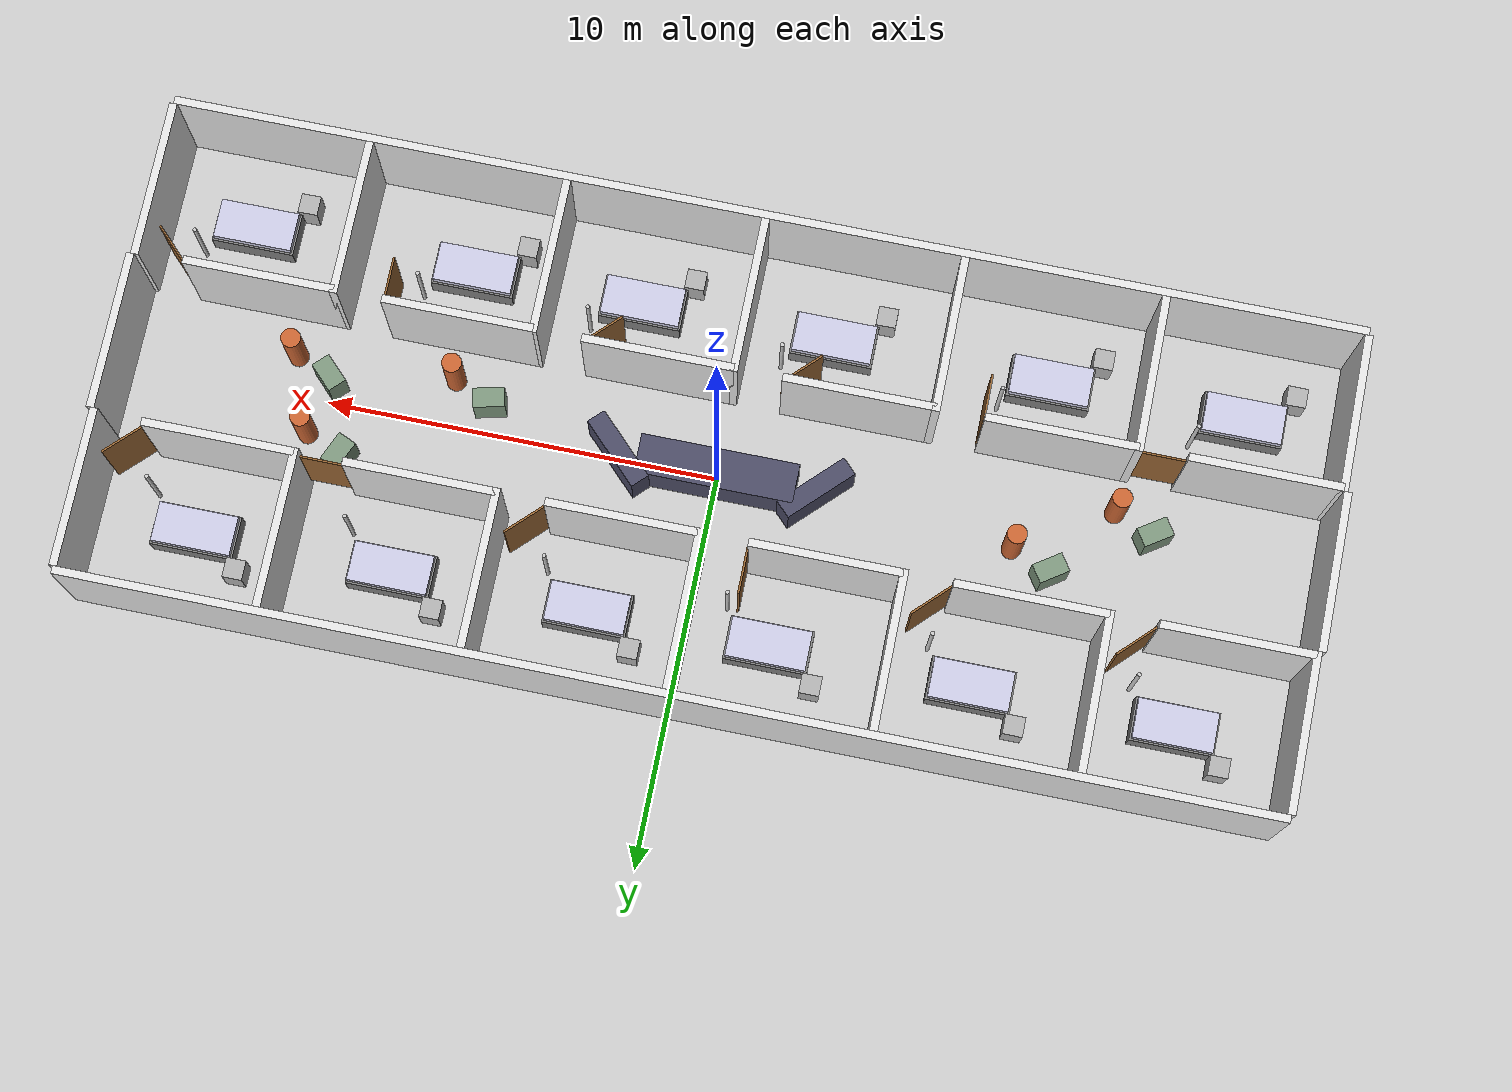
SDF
<?xml version="1.0" ?>
<sdf version="1.8">
  <world name="hospital_ward">
    <physics name="1ms" type="ignored">
      <max_step_size>0.001</max_step_size>
      <real_time_factor>1.0</real_time_factor>
    </physics>

    <plugin filename="gz-sim-physics-system" name="gz::sim::systems::Physics" />
    <plugin filename="gz-sim-sensors-system" name="gz::sim::systems::Sensors">
      <render_engine>ogre2</render_engine>
    </plugin>
    <plugin filename="gz-sim-user-commands-system" name="gz::sim::systems::UserCommands" />
    <plugin filename="gz-sim-scene-broadcaster-system" name="gz::sim::systems::SceneBroadcaster" />

    <light type="directional" name="sun">
      <cast_shadows>true</cast_shadows>
      <pose>0 0 10 0 0 0</pose>
      <diffuse>0.8 0.8 0.8 1</diffuse>
      <specular>0.2 0.2 0.2 1</specular>
      <attenuation>
        <range>1000</range>
        <constant>0.9</constant>
        <linear>0.01</linear>
        <quadratic>0.001</quadratic>
      </attenuation>
      <direction>-0.5 0.1 -0.9</direction>
    </light>

    <model name="ground_plane">
      <static>true</static>
      <pose>0 0 -0.05 0 0 0</pose>
      <link name="link">
        <collision name="collision">
          <geometry>
            <box><size>100 100 0.1</size></box>
          </geometry>
        </collision>
        <visual name="visual">
          <geometry>
            <box><size>100 100 0.1</size></box>
          </geometry>
          <material>
            <ambient>0.8 0.8 0.8 1</ambient>
            <diffuse>0.8 0.8 0.8 1</diffuse>
          </material>
        </visual>
      </link>
    </model>

    <model name="wall_end_1">
      <static>true</static>
      <pose>-15.100 0.000 1.500 0.000 0.000 0.000</pose>
      <link name="link">
        <collision name="collision">
          <geometry><box><size>0.200 4.000 3.000</size></box></geometry>
        </collision>
        <visual name="visual">
          <geometry><box><size>0.200 4.000 3.000</size></box></geometry>
          <material>
            <ambient>0.9 0.9 0.9 1</ambient>
            <diffuse>0.9 0.9 0.9 1</diffuse>
          </material>
        </visual>
      </link>
    </model>

    <model name="wall_end_2">
      <static>true</static>
      <pose>15.100 0.000 1.500 0.000 0.000 0.000</pose>
      <link name="link">
        <collision name="collision">
          <geometry><box><size>0.200 4.000 3.000</size></box></geometry>
        </collision>
        <visual name="visual">
          <geometry><box><size>0.200 4.000 3.000</size></box></geometry>
          <material>
            <ambient>0.9 0.9 0.9 1</ambient>
            <diffuse>0.9 0.9 0.9 1</diffuse>
          </material>
        </visual>
      </link>
    </model>

    <model name="outer_wall_1">
      <static>true</static>
      <pose>0.000 6.100 1.500 0.000 0.000 0.000</pose>
      <link name="link">
        <collision name="collision">
          <geometry><box><size>30.000 0.200 3.000</size></box></geometry>
        </collision>
        <visual name="visual">
          <geometry><box><size>30.000 0.200 3.000</size></box></geometry>
          <material>
            <ambient>0.9 0.9 0.9 1</ambient>
            <diffuse>0.9 0.9 0.9 1</diffuse>
          </material>
        </visual>
      </link>
    </model>

    <model name="div_wall_1">
      <static>true</static>
      <pose>-15.000 4.000 1.500 0.000 0.000 0.000</pose>
      <link name="link">
        <collision name="collision">
          <geometry><box><size>0.200 4.000 3.000</size></box></geometry>
        </collision>
        <visual name="visual">
          <geometry><box><size>0.200 4.000 3.000</size></box></geometry>
          <material>
            <ambient>0.9 0.9 0.9 1</ambient>
            <diffuse>0.9 0.9 0.9 1</diffuse>
          </material>
        </visual>
      </link>
    </model>

    <model name="corr_wall_1">
      <static>true</static>
      <pose>-13.100 2.100 1.500 0.000 0.000 0.000</pose>
      <link name="link">
        <collision name="collision">
          <geometry><box><size>3.800 0.200 3.000</size></box></geometry>
        </collision>
        <visual name="visual">
          <geometry><box><size>3.800 0.200 3.000</size></box></geometry>
          <material>
            <ambient>0.9 0.9 0.9 1</ambient>
            <diffuse>0.9 0.9 0.9 1</diffuse>
          </material>
        </visual>
      </link>
    </model>

    <model name="door_1">
      <static>true</static>
      <pose>-10.776 2.524 1.500 0.000 0.000 0.785</pose>
      <link name="link">
        <collision name="collision">
          <geometry><box><size>1.200 0.050 2.200</size></box></geometry>
        </collision>
        <visual name="visual">
          <geometry><box><size>1.200 0.050 2.200</size></box></geometry>
          <material>
            <ambient>0.6 0.4 0.2 1</ambient>
            <diffuse>0.6 0.4 0.2 1</diffuse>
          </material>
        </visual>
      </link>
    </model>

    <model name="bed_frame_1">
      <static>true</static>
      <pose>-12.231 4.000 0.300 0.000 0.000 0.000</pose>
      <link name="link">
        <collision name="collision">
          <geometry><box><size>2.100 1.100 0.600</size></box></geometry>
        </collision>
        <visual name="visual">
          <geometry><box><size>2.100 1.100 0.600</size></box></geometry>
          <material>
            <ambient>0.5 0.5 0.5 1</ambient>
            <diffuse>0.5 0.5 0.5 1</diffuse>
          </material>
        </visual>
      </link>
    </model>

    <model name="bed_1">
      <static>true</static>
      <pose>-12.231 4.000 0.700 0.000 0.000 0.000</pose>
      <link name="link">
        <collision name="collision">
          <geometry><box><size>2.000 1.000 0.200</size></box></geometry>
        </collision>
        <visual name="visual">
          <geometry><box><size>2.000 1.000 0.200</size></box></geometry>
          <material>
            <ambient>0.8 0.8 0.9 1</ambient>
            <diffuse>0.8 0.8 0.9 1</diffuse>
          </material>
        </visual>
      </link>
    </model>

    <model name="table_1">
      <static>true</static>
      <pose>-13.431 4.800 0.400 0.000 0.000 0.000</pose>
      <link name="link">
        <collision name="collision">
          <geometry><box><size>0.500 0.500 0.800</size></box></geometry>
        </collision>
        <visual name="visual">
          <geometry><box><size>0.500 0.500 0.800</size></box></geometry>
          <material>
            <ambient>0.7 0.7 0.7 1</ambient>
            <diffuse>0.7 0.7 0.7 1</diffuse>
          </material>
        </visual>
      </link>
    </model>

    <model name="iv_pole_1">
      <static>true</static>
      <pose>-11.031 3.200 1.000 0.000 0.000 0.000</pose>
      <link name="link">
        <collision name="collision">
          <geometry><cylinder><radius>0.050</radius><length>2.000</length></cylinder></geometry>
        </collision>
        <visual name="visual">
          <geometry><cylinder><radius>0.050</radius><length>2.000</length></cylinder></geometry>
          <material>
            <ambient>0.8 0.8 0.8 1</ambient>
            <diffuse>0.8 0.8 0.8 1</diffuse>
          </material>
        </visual>
      </link>
    </model>

    <model name="div_wall_2">
      <static>true</static>
      <pose>-10.000 4.000 1.500 0.000 0.000 0.000</pose>
      <link name="link">
        <collision name="collision">
          <geometry><box><size>0.200 4.000 3.000</size></box></geometry>
        </collision>
        <visual name="visual">
          <geometry><box><size>0.200 4.000 3.000</size></box></geometry>
          <material>
            <ambient>0.9 0.9 0.9 1</ambient>
            <diffuse>0.9 0.9 0.9 1</diffuse>
          </material>
        </visual>
      </link>
    </model>

    <model name="corr_wall_2">
      <static>true</static>
      <pose>-8.100 2.100 1.500 0.000 0.000 0.000</pose>
      <link name="link">
        <collision name="collision">
          <geometry><box><size>3.800 0.200 3.000</size></box></geometry>
        </collision>
        <visual name="visual">
          <geometry><box><size>3.800 0.200 3.000</size></box></geometry>
          <material>
            <ambient>0.9 0.9 0.9 1</ambient>
            <diffuse>0.9 0.9 0.9 1</diffuse>
          </material>
        </visual>
      </link>
    </model>

    <model name="door_2">
      <static>true</static>
      <pose>-5.776 2.524 1.500 0.000 0.000 0.785</pose>
      <link name="link">
        <collision name="collision">
          <geometry><box><size>1.200 0.050 2.200</size></box></geometry>
        </collision>
        <visual name="visual">
          <geometry><box><size>1.200 0.050 2.200</size></box></geometry>
          <material>
            <ambient>0.6 0.4 0.2 1</ambient>
            <diffuse>0.6 0.4 0.2 1</diffuse>
          </material>
        </visual>
      </link>
    </model>

    <model name="bed_frame_2">
      <static>true</static>
      <pose>-7.167 4.000 0.300 0.000 0.000 0.000</pose>
      <link name="link">
        <collision name="collision">
          <geometry><box><size>2.100 1.100 0.600</size></box></geometry>
        </collision>
        <visual name="visual">
          <geometry><box><size>2.100 1.100 0.600</size></box></geometry>
          <material>
            <ambient>0.5 0.5 0.5 1</ambient>
            <diffuse>0.5 0.5 0.5 1</diffuse>
          </material>
        </visual>
      </link>
    </model>

    <model name="bed_2">
      <static>true</static>
      <pose>-7.167 4.000 0.700 0.000 0.000 0.000</pose>
      <link name="link">
        <collision name="collision">
          <geometry><box><size>2.000 1.000 0.200</size></box></geometry>
        </collision>
        <visual name="visual">
          <geometry><box><size>2.000 1.000 0.200</size></box></geometry>
          <material>
            <ambient>0.8 0.8 0.9 1</ambient>
            <diffuse>0.8 0.8 0.9 1</diffuse>
          </material>
        </visual>
      </link>
    </model>

    <model name="table_2">
      <static>true</static>
      <pose>-8.367 4.800 0.400 0.000 0.000 0.000</pose>
      <link name="link">
        <collision name="collision">
          <geometry><box><size>0.500 0.500 0.800</size></box></geometry>
        </collision>
        <visual name="visual">
          <geometry><box><size>0.500 0.500 0.800</size></box></geometry>
          <material>
            <ambient>0.7 0.7 0.7 1</ambient>
            <diffuse>0.7 0.7 0.7 1</diffuse>
          </material>
        </visual>
      </link>
    </model>

    <model name="iv_pole_2">
      <static>true</static>
      <pose>-5.967 3.200 1.000 0.000 0.000 0.000</pose>
      <link name="link">
        <collision name="collision">
          <geometry><cylinder><radius>0.050</radius><length>2.000</length></cylinder></geometry>
        </collision>
        <visual name="visual">
          <geometry><cylinder><radius>0.050</radius><length>2.000</length></cylinder></geometry>
          <material>
            <ambient>0.8 0.8 0.8 1</ambient>
            <diffuse>0.8 0.8 0.8 1</diffuse>
          </material>
        </visual>
      </link>
    </model>

    <model name="div_wall_3">
      <static>true</static>
      <pose>-5.000 4.000 1.500 0.000 0.000 0.000</pose>
      <link name="link">
        <collision name="collision">
          <geometry><box><size>0.200 4.000 3.000</size></box></geometry>
        </collision>
        <visual name="visual">
          <geometry><box><size>0.200 4.000 3.000</size></box></geometry>
          <material>
            <ambient>0.9 0.9 0.9 1</ambient>
            <diffuse>0.9 0.9 0.9 1</diffuse>
          </material>
        </visual>
      </link>
    </model>

    <model name="corr_wall_3">
      <static>true</static>
      <pose>-3.100 2.100 1.500 0.000 0.000 0.000</pose>
      <link name="link">
        <collision name="collision">
          <geometry><box><size>3.800 0.200 3.000</size></box></geometry>
        </collision>
        <visual name="visual">
          <geometry><box><size>3.800 0.200 3.000</size></box></geometry>
          <material>
            <ambient>0.9 0.9 0.9 1</ambient>
            <diffuse>0.9 0.9 0.9 1</diffuse>
          </material>
        </visual>
      </link>
    </model>

    <model name="door_3">
      <static>true</static>
      <pose>-1.200 2.700 1.500 0.000 0.000 1.571</pose>
      <link name="link">
        <collision name="collision">
          <geometry><box><size>1.200 0.050 2.200</size></box></geometry>
        </collision>
        <visual name="visual">
          <geometry><box><size>1.200 0.050 2.200</size></box></geometry>
          <material>
            <ambient>0.6 0.4 0.2 1</ambient>
            <diffuse>0.6 0.4 0.2 1</diffuse>
          </material>
        </visual>
      </link>
    </model>

    <model name="bed_frame_3">
      <static>true</static>
      <pose>-2.115 4.000 0.300 0.000 0.000 0.000</pose>
      <link name="link">
        <collision name="collision">
          <geometry><box><size>2.100 1.100 0.600</size></box></geometry>
        </collision>
        <visual name="visual">
          <geometry><box><size>2.100 1.100 0.600</size></box></geometry>
          <material>
            <ambient>0.5 0.5 0.5 1</ambient>
            <diffuse>0.5 0.5 0.5 1</diffuse>
          </material>
        </visual>
      </link>
    </model>

    <model name="bed_3">
      <static>true</static>
      <pose>-2.115 4.000 0.700 0.000 0.000 0.000</pose>
      <link name="link">
        <collision name="collision">
          <geometry><box><size>2.000 1.000 0.200</size></box></geometry>
        </collision>
        <visual name="visual">
          <geometry><box><size>2.000 1.000 0.200</size></box></geometry>
          <material>
            <ambient>0.8 0.8 0.9 1</ambient>
            <diffuse>0.8 0.8 0.9 1</diffuse>
          </material>
        </visual>
      </link>
    </model>

    <model name="table_3">
      <static>true</static>
      <pose>-3.315 4.800 0.400 0.000 0.000 0.000</pose>
      <link name="link">
        <collision name="collision">
          <geometry><box><size>0.500 0.500 0.800</size></box></geometry>
        </collision>
        <visual name="visual">
          <geometry><box><size>0.500 0.500 0.800</size></box></geometry>
          <material>
            <ambient>0.7 0.7 0.7 1</ambient>
            <diffuse>0.7 0.7 0.7 1</diffuse>
          </material>
        </visual>
      </link>
    </model>

    <model name="iv_pole_3">
      <static>true</static>
      <pose>-0.915 3.200 1.000 0.000 0.000 0.000</pose>
      <link name="link">
        <collision name="collision">
          <geometry><cylinder><radius>0.050</radius><length>2.000</length></cylinder></geometry>
        </collision>
        <visual name="visual">
          <geometry><cylinder><radius>0.050</radius><length>2.000</length></cylinder></geometry>
          <material>
            <ambient>0.8 0.8 0.8 1</ambient>
            <diffuse>0.8 0.8 0.8 1</diffuse>
          </material>
        </visual>
      </link>
    </model>

    <model name="div_wall_4">
      <static>true</static>
      <pose>0.000 4.000 1.500 0.000 0.000 0.000</pose>
      <link name="link">
        <collision name="collision">
          <geometry><box><size>0.200 4.000 3.000</size></box></geometry>
        </collision>
        <visual name="visual">
          <geometry><box><size>0.200 4.000 3.000</size></box></geometry>
          <material>
            <ambient>0.9 0.9 0.9 1</ambient>
            <diffuse>0.9 0.9 0.9 1</diffuse>
          </material>
        </visual>
      </link>
    </model>

    <model name="corr_wall_4">
      <static>true</static>
      <pose>1.900 2.100 1.500 0.000 0.000 0.000</pose>
      <link name="link">
        <collision name="collision">
          <geometry><box><size>3.800 0.200 3.000</size></box></geometry>
        </collision>
        <visual name="visual">
          <geometry><box><size>3.800 0.200 3.000</size></box></geometry>
          <material>
            <ambient>0.9 0.9 0.9 1</ambient>
            <diffuse>0.9 0.9 0.9 1</diffuse>
          </material>
        </visual>
      </link>
    </model>

    <model name="door_4">
      <static>true</static>
      <pose>4.224 2.524 1.500 0.000 0.000 0.785</pose>
      <link name="link">
        <collision name="collision">
          <geometry><box><size>1.200 0.050 2.200</size></box></geometry>
        </collision>
        <visual name="visual">
          <geometry><box><size>1.200 0.050 2.200</size></box></geometry>
          <material>
            <ambient>0.6 0.4 0.2 1</ambient>
            <diffuse>0.6 0.4 0.2 1</diffuse>
          </material>
        </visual>
      </link>
    </model>

    <model name="bed_frame_4">
      <static>true</static>
      <pose>2.433 4.000 0.300 0.000 0.000 0.000</pose>
      <link name="link">
        <collision name="collision">
          <geometry><box><size>2.100 1.100 0.600</size></box></geometry>
        </collision>
        <visual name="visual">
          <geometry><box><size>2.100 1.100 0.600</size></box></geometry>
          <material>
            <ambient>0.5 0.5 0.5 1</ambient>
            <diffuse>0.5 0.5 0.5 1</diffuse>
          </material>
        </visual>
      </link>
    </model>

    <model name="bed_4">
      <static>true</static>
      <pose>2.433 4.000 0.700 0.000 0.000 0.000</pose>
      <link name="link">
        <collision name="collision">
          <geometry><box><size>2.000 1.000 0.200</size></box></geometry>
        </collision>
        <visual name="visual">
          <geometry><box><size>2.000 1.000 0.200</size></box></geometry>
          <material>
            <ambient>0.8 0.8 0.9 1</ambient>
            <diffuse>0.8 0.8 0.9 1</diffuse>
          </material>
        </visual>
      </link>
    </model>

    <model name="table_4">
      <static>true</static>
      <pose>1.233 4.800 0.400 0.000 0.000 0.000</pose>
      <link name="link">
        <collision name="collision">
          <geometry><box><size>0.500 0.500 0.800</size></box></geometry>
        </collision>
        <visual name="visual">
          <geometry><box><size>0.500 0.500 0.800</size></box></geometry>
          <material>
            <ambient>0.7 0.7 0.7 1</ambient>
            <diffuse>0.7 0.7 0.7 1</diffuse>
          </material>
        </visual>
      </link>
    </model>

    <model name="iv_pole_4">
      <static>true</static>
      <pose>3.633 3.200 1.000 0.000 0.000 0.000</pose>
      <link name="link">
        <collision name="collision">
          <geometry><cylinder><radius>0.050</radius><length>2.000</length></cylinder></geometry>
        </collision>
        <visual name="visual">
          <geometry><cylinder><radius>0.050</radius><length>2.000</length></cylinder></geometry>
          <material>
            <ambient>0.8 0.8 0.8 1</ambient>
            <diffuse>0.8 0.8 0.8 1</diffuse>
          </material>
        </visual>
      </link>
    </model>

    <model name="div_wall_5">
      <static>true</static>
      <pose>5.000 4.000 1.500 0.000 0.000 0.000</pose>
      <link name="link">
        <collision name="collision">
          <geometry><box><size>0.200 4.000 3.000</size></box></geometry>
        </collision>
        <visual name="visual">
          <geometry><box><size>0.200 4.000 3.000</size></box></geometry>
          <material>
            <ambient>0.9 0.9 0.9 1</ambient>
            <diffuse>0.9 0.9 0.9 1</diffuse>
          </material>
        </visual>
      </link>
    </model>

    <model name="corr_wall_5">
      <static>true</static>
      <pose>6.900 2.100 1.500 0.000 0.000 0.000</pose>
      <link name="link">
        <collision name="collision">
          <geometry><box><size>3.800 0.200 3.000</size></box></geometry>
        </collision>
        <visual name="visual">
          <geometry><box><size>3.800 0.200 3.000</size></box></geometry>
          <material>
            <ambient>0.9 0.9 0.9 1</ambient>
            <diffuse>0.9 0.9 0.9 1</diffuse>
          </material>
        </visual>
      </link>
    </model>

    <model name="door_5">
      <static>true</static>
      <pose>9.400 2.100 1.500 0.000 0.000 0.000</pose>
      <link name="link">
        <collision name="collision">
          <geometry><box><size>1.200 0.050 2.200</size></box></geometry>
        </collision>
        <visual name="visual">
          <geometry><box><size>1.200 0.050 2.200</size></box></geometry>
          <material>
            <ambient>0.6 0.4 0.2 1</ambient>
            <diffuse>0.6 0.4 0.2 1</diffuse>
          </material>
        </visual>
      </link>
    </model>

    <model name="bed_frame_5">
      <static>true</static>
      <pose>7.400 4.000 0.300 0.000 0.000 0.000</pose>
      <link name="link">
        <collision name="collision">
          <geometry><box><size>2.100 1.100 0.600</size></box></geometry>
        </collision>
        <visual name="visual">
          <geometry><box><size>2.100 1.100 0.600</size></box></geometry>
          <material>
            <ambient>0.5 0.5 0.5 1</ambient>
            <diffuse>0.5 0.5 0.5 1</diffuse>
          </material>
        </visual>
      </link>
    </model>

    <model name="bed_5">
      <static>true</static>
      <pose>7.400 4.000 0.700 0.000 0.000 0.000</pose>
      <link name="link">
        <collision name="collision">
          <geometry><box><size>2.000 1.000 0.200</size></box></geometry>
        </collision>
        <visual name="visual">
          <geometry><box><size>2.000 1.000 0.200</size></box></geometry>
          <material>
            <ambient>0.8 0.8 0.9 1</ambient>
            <diffuse>0.8 0.8 0.9 1</diffuse>
          </material>
        </visual>
      </link>
    </model>

    <model name="table_5">
      <static>true</static>
      <pose>6.200 4.800 0.400 0.000 0.000 0.000</pose>
      <link name="link">
        <collision name="collision">
          <geometry><box><size>0.500 0.500 0.800</size></box></geometry>
        </collision>
        <visual name="visual">
          <geometry><box><size>0.500 0.500 0.800</size></box></geometry>
          <material>
            <ambient>0.7 0.7 0.7 1</ambient>
            <diffuse>0.7 0.7 0.7 1</diffuse>
          </material>
        </visual>
      </link>
    </model>

    <model name="iv_pole_5">
      <static>true</static>
      <pose>8.600 3.200 1.000 0.000 0.000 0.000</pose>
      <link name="link">
        <collision name="collision">
          <geometry><cylinder><radius>0.050</radius><length>2.000</length></cylinder></geometry>
        </collision>
        <visual name="visual">
          <geometry><cylinder><radius>0.050</radius><length>2.000</length></cylinder></geometry>
          <material>
            <ambient>0.8 0.8 0.8 1</ambient>
            <diffuse>0.8 0.8 0.8 1</diffuse>
          </material>
        </visual>
      </link>
    </model>

    <model name="div_wall_6">
      <static>true</static>
      <pose>10.000 4.000 1.500 0.000 0.000 0.000</pose>
      <link name="link">
        <collision name="collision">
          <geometry><box><size>0.200 4.000 3.000</size></box></geometry>
        </collision>
        <visual name="visual">
          <geometry><box><size>0.200 4.000 3.000</size></box></geometry>
          <material>
            <ambient>0.9 0.9 0.9 1</ambient>
            <diffuse>0.9 0.9 0.9 1</diffuse>
          </material>
        </visual>
      </link>
    </model>

    <model name="corr_wall_6">
      <static>true</static>
      <pose>11.900 2.100 1.500 0.000 0.000 0.000</pose>
      <link name="link">
        <collision name="collision">
          <geometry><box><size>3.800 0.200 3.000</size></box></geometry>
        </collision>
        <visual name="visual">
          <geometry><box><size>3.800 0.200 3.000</size></box></geometry>
          <material>
            <ambient>0.9 0.9 0.9 1</ambient>
            <diffuse>0.9 0.9 0.9 1</diffuse>
          </material>
        </visual>
      </link>
    </model>

    <model name="door_6">
      <static>true</static>
      <pose>14.224 2.524 1.500 0.000 0.000 0.785</pose>
      <link name="link">
        <collision name="collision">
          <geometry><box><size>1.200 0.050 2.200</size></box></geometry>
        </collision>
        <visual name="visual">
          <geometry><box><size>1.200 0.050 2.200</size></box></geometry>
          <material>
            <ambient>0.6 0.4 0.2 1</ambient>
            <diffuse>0.6 0.4 0.2 1</diffuse>
          </material>
        </visual>
      </link>
    </model>

    <model name="bed_frame_6">
      <static>true</static>
      <pose>12.373 4.000 0.300 0.000 0.000 0.000</pose>
      <link name="link">
        <collision name="collision">
          <geometry><box><size>2.100 1.100 0.600</size></box></geometry>
        </collision>
        <visual name="visual">
          <geometry><box><size>2.100 1.100 0.600</size></box></geometry>
          <material>
            <ambient>0.5 0.5 0.5 1</ambient>
            <diffuse>0.5 0.5 0.5 1</diffuse>
          </material>
        </visual>
      </link>
    </model>

    <model name="bed_6">
      <static>true</static>
      <pose>12.373 4.000 0.700 0.000 0.000 0.000</pose>
      <link name="link">
        <collision name="collision">
          <geometry><box><size>2.000 1.000 0.200</size></box></geometry>
        </collision>
        <visual name="visual">
          <geometry><box><size>2.000 1.000 0.200</size></box></geometry>
          <material>
            <ambient>0.8 0.8 0.9 1</ambient>
            <diffuse>0.8 0.8 0.9 1</diffuse>
          </material>
        </visual>
      </link>
    </model>

    <model name="table_6">
      <static>true</static>
      <pose>11.173 4.800 0.400 0.000 0.000 0.000</pose>
      <link name="link">
        <collision name="collision">
          <geometry><box><size>0.500 0.500 0.800</size></box></geometry>
        </collision>
        <visual name="visual">
          <geometry><box><size>0.500 0.500 0.800</size></box></geometry>
          <material>
            <ambient>0.7 0.7 0.7 1</ambient>
            <diffuse>0.7 0.7 0.7 1</diffuse>
          </material>
        </visual>
      </link>
    </model>

    <model name="iv_pole_6">
      <static>true</static>
      <pose>13.573 3.200 1.000 0.000 0.000 0.000</pose>
      <link name="link">
        <collision name="collision">
          <geometry><cylinder><radius>0.050</radius><length>2.000</length></cylinder></geometry>
        </collision>
        <visual name="visual">
          <geometry><cylinder><radius>0.050</radius><length>2.000</length></cylinder></geometry>
          <material>
            <ambient>0.8 0.8 0.8 1</ambient>
            <diffuse>0.8 0.8 0.8 1</diffuse>
          </material>
        </visual>
      </link>
    </model>

    <model name="div_wall_end_1">
      <static>true</static>
      <pose>15.000 4.000 1.500 0.000 0.000 0.000</pose>
      <link name="link">
        <collision name="collision">
          <geometry><box><size>0.200 4.000 3.000</size></box></geometry>
        </collision>
        <visual name="visual">
          <geometry><box><size>0.200 4.000 3.000</size></box></geometry>
          <material>
            <ambient>0.9 0.9 0.9 1</ambient>
            <diffuse>0.9 0.9 0.9 1</diffuse>
          </material>
        </visual>
      </link>
    </model>

    <model name="outer_wall_-1">
      <static>true</static>
      <pose>0.000 -6.100 1.500 0.000 0.000 0.000</pose>
      <link name="link">
        <collision name="collision">
          <geometry><box><size>30.000 0.200 3.000</size></box></geometry>
        </collision>
        <visual name="visual">
          <geometry><box><size>30.000 0.200 3.000</size></box></geometry>
          <material>
            <ambient>0.9 0.9 0.9 1</ambient>
            <diffuse>0.9 0.9 0.9 1</diffuse>
          </material>
        </visual>
      </link>
    </model>

    <model name="div_wall_7">
      <static>true</static>
      <pose>-15.000 -4.000 1.500 0.000 0.000 0.000</pose>
      <link name="link">
        <collision name="collision">
          <geometry><box><size>0.200 4.000 3.000</size></box></geometry>
        </collision>
        <visual name="visual">
          <geometry><box><size>0.200 4.000 3.000</size></box></geometry>
          <material>
            <ambient>0.9 0.9 0.9 1</ambient>
            <diffuse>0.9 0.9 0.9 1</diffuse>
          </material>
        </visual>
      </link>
    </model>

    <model name="corr_wall_7">
      <static>true</static>
      <pose>-13.100 -2.100 1.500 0.000 0.000 0.000</pose>
      <link name="link">
        <collision name="collision">
          <geometry><box><size>3.800 0.200 3.000</size></box></geometry>
        </collision>
        <visual name="visual">
          <geometry><box><size>3.800 0.200 3.000</size></box></geometry>
          <material>
            <ambient>0.9 0.9 0.9 1</ambient>
            <diffuse>0.9 0.9 0.9 1</diffuse>
          </material>
        </visual>
      </link>
    </model>

    <model name="door_7">
      <static>true</static>
      <pose>-10.600 -2.100 1.500 0.000 0.000 -0.000</pose>
      <link name="link">
        <collision name="collision">
          <geometry><box><size>1.200 0.050 2.200</size></box></geometry>
        </collision>
        <visual name="visual">
          <geometry><box><size>1.200 0.050 2.200</size></box></geometry>
          <material>
            <ambient>0.6 0.4 0.2 1</ambient>
            <diffuse>0.6 0.4 0.2 1</diffuse>
          </material>
        </visual>
      </link>
    </model>

    <model name="bed_frame_7">
      <static>true</static>
      <pose>-12.619 -4.000 0.300 0.000 0.000 0.000</pose>
      <link name="link">
        <collision name="collision">
          <geometry><box><size>2.100 1.100 0.600</size></box></geometry>
        </collision>
        <visual name="visual">
          <geometry><box><size>2.100 1.100 0.600</size></box></geometry>
          <material>
            <ambient>0.5 0.5 0.5 1</ambient>
            <diffuse>0.5 0.5 0.5 1</diffuse>
          </material>
        </visual>
      </link>
    </model>

    <model name="bed_7">
      <static>true</static>
      <pose>-12.619 -4.000 0.700 0.000 0.000 0.000</pose>
      <link name="link">
        <collision name="collision">
          <geometry><box><size>2.000 1.000 0.200</size></box></geometry>
        </collision>
        <visual name="visual">
          <geometry><box><size>2.000 1.000 0.200</size></box></geometry>
          <material>
            <ambient>0.8 0.8 0.9 1</ambient>
            <diffuse>0.8 0.8 0.9 1</diffuse>
          </material>
        </visual>
      </link>
    </model>

    <model name="table_7">
      <static>true</static>
      <pose>-13.819 -4.800 0.400 0.000 0.000 0.000</pose>
      <link name="link">
        <collision name="collision">
          <geometry><box><size>0.500 0.500 0.800</size></box></geometry>
        </collision>
        <visual name="visual">
          <geometry><box><size>0.500 0.500 0.800</size></box></geometry>
          <material>
            <ambient>0.7 0.7 0.7 1</ambient>
            <diffuse>0.7 0.7 0.7 1</diffuse>
          </material>
        </visual>
      </link>
    </model>

    <model name="iv_pole_7">
      <static>true</static>
      <pose>-11.419 -3.200 1.000 0.000 0.000 0.000</pose>
      <link name="link">
        <collision name="collision">
          <geometry><cylinder><radius>0.050</radius><length>2.000</length></cylinder></geometry>
        </collision>
        <visual name="visual">
          <geometry><cylinder><radius>0.050</radius><length>2.000</length></cylinder></geometry>
          <material>
            <ambient>0.8 0.8 0.8 1</ambient>
            <diffuse>0.8 0.8 0.8 1</diffuse>
          </material>
        </visual>
      </link>
    </model>

    <model name="div_wall_8">
      <static>true</static>
      <pose>-10.000 -4.000 1.500 0.000 0.000 0.000</pose>
      <link name="link">
        <collision name="collision">
          <geometry><box><size>0.200 4.000 3.000</size></box></geometry>
        </collision>
        <visual name="visual">
          <geometry><box><size>0.200 4.000 3.000</size></box></geometry>
          <material>
            <ambient>0.9 0.9 0.9 1</ambient>
            <diffuse>0.9 0.9 0.9 1</diffuse>
          </material>
        </visual>
      </link>
    </model>

    <model name="corr_wall_8">
      <static>true</static>
      <pose>-8.100 -2.100 1.500 0.000 0.000 0.000</pose>
      <link name="link">
        <collision name="collision">
          <geometry><box><size>3.800 0.200 3.000</size></box></geometry>
        </collision>
        <visual name="visual">
          <geometry><box><size>3.800 0.200 3.000</size></box></geometry>
          <material>
            <ambient>0.9 0.9 0.9 1</ambient>
            <diffuse>0.9 0.9 0.9 1</diffuse>
          </material>
        </visual>
      </link>
    </model>

    <model name="door_8">
      <static>true</static>
      <pose>-6.200 -2.700 1.500 0.000 0.000 -1.571</pose>
      <link name="link">
        <collision name="collision">
          <geometry><box><size>1.200 0.050 2.200</size></box></geometry>
        </collision>
        <visual name="visual">
          <geometry><box><size>1.200 0.050 2.200</size></box></geometry>
          <material>
            <ambient>0.6 0.4 0.2 1</ambient>
            <diffuse>0.6 0.4 0.2 1</diffuse>
          </material>
        </visual>
      </link>
    </model>

    <model name="bed_frame_8">
      <static>true</static>
      <pose>-7.730 -4.000 0.300 0.000 0.000 0.000</pose>
      <link name="link">
        <collision name="collision">
          <geometry><box><size>2.100 1.100 0.600</size></box></geometry>
        </collision>
        <visual name="visual">
          <geometry><box><size>2.100 1.100 0.600</size></box></geometry>
          <material>
            <ambient>0.5 0.5 0.5 1</ambient>
            <diffuse>0.5 0.5 0.5 1</diffuse>
          </material>
        </visual>
      </link>
    </model>

    <model name="bed_8">
      <static>true</static>
      <pose>-7.730 -4.000 0.700 0.000 0.000 0.000</pose>
      <link name="link">
        <collision name="collision">
          <geometry><box><size>2.000 1.000 0.200</size></box></geometry>
        </collision>
        <visual name="visual">
          <geometry><box><size>2.000 1.000 0.200</size></box></geometry>
          <material>
            <ambient>0.8 0.8 0.9 1</ambient>
            <diffuse>0.8 0.8 0.9 1</diffuse>
          </material>
        </visual>
      </link>
    </model>

    <model name="table_8">
      <static>true</static>
      <pose>-8.930 -4.800 0.400 0.000 0.000 0.000</pose>
      <link name="link">
        <collision name="collision">
          <geometry><box><size>0.500 0.500 0.800</size></box></geometry>
        </collision>
        <visual name="visual">
          <geometry><box><size>0.500 0.500 0.800</size></box></geometry>
          <material>
            <ambient>0.7 0.7 0.7 1</ambient>
            <diffuse>0.7 0.7 0.7 1</diffuse>
          </material>
        </visual>
      </link>
    </model>

    <model name="iv_pole_8">
      <static>true</static>
      <pose>-6.530 -3.200 1.000 0.000 0.000 0.000</pose>
      <link name="link">
        <collision name="collision">
          <geometry><cylinder><radius>0.050</radius><length>2.000</length></cylinder></geometry>
        </collision>
        <visual name="visual">
          <geometry><cylinder><radius>0.050</radius><length>2.000</length></cylinder></geometry>
          <material>
            <ambient>0.8 0.8 0.8 1</ambient>
            <diffuse>0.8 0.8 0.8 1</diffuse>
          </material>
        </visual>
      </link>
    </model>

    <model name="div_wall_9">
      <static>true</static>
      <pose>-5.000 -4.000 1.500 0.000 0.000 0.000</pose>
      <link name="link">
        <collision name="collision">
          <geometry><box><size>0.200 4.000 3.000</size></box></geometry>
        </collision>
        <visual name="visual">
          <geometry><box><size>0.200 4.000 3.000</size></box></geometry>
          <material>
            <ambient>0.9 0.9 0.9 1</ambient>
            <diffuse>0.9 0.9 0.9 1</diffuse>
          </material>
        </visual>
      </link>
    </model>

    <model name="corr_wall_9">
      <static>true</static>
      <pose>-3.100 -2.100 1.500 0.000 0.000 0.000</pose>
      <link name="link">
        <collision name="collision">
          <geometry><box><size>3.800 0.200 3.000</size></box></geometry>
        </collision>
        <visual name="visual">
          <geometry><box><size>3.800 0.200 3.000</size></box></geometry>
          <material>
            <ambient>0.9 0.9 0.9 1</ambient>
            <diffuse>0.9 0.9 0.9 1</diffuse>
          </material>
        </visual>
      </link>
    </model>

    <model name="door_9">
      <static>true</static>
      <pose>-1.624 -2.524 1.500 0.000 0.000 -2.356</pose>
      <link name="link">
        <collision name="collision">
          <geometry><box><size>1.200 0.050 2.200</size></box></geometry>
        </collision>
        <visual name="visual">
          <geometry><box><size>1.200 0.050 2.200</size></box></geometry>
          <material>
            <ambient>0.6 0.4 0.2 1</ambient>
            <diffuse>0.6 0.4 0.2 1</diffuse>
          </material>
        </visual>
      </link>
    </model>

    <model name="bed_frame_9">
      <static>true</static>
      <pose>-2.196 -4.000 0.300 0.000 0.000 0.000</pose>
      <link name="link">
        <collision name="collision">
          <geometry><box><size>2.100 1.100 0.600</size></box></geometry>
        </collision>
        <visual name="visual">
          <geometry><box><size>2.100 1.100 0.600</size></box></geometry>
          <material>
            <ambient>0.5 0.5 0.5 1</ambient>
            <diffuse>0.5 0.5 0.5 1</diffuse>
          </material>
        </visual>
      </link>
    </model>

    <model name="bed_9">
      <static>true</static>
      <pose>-2.196 -4.000 0.700 0.000 0.000 0.000</pose>
      <link name="link">
        <collision name="collision">
          <geometry><box><size>2.000 1.000 0.200</size></box></geometry>
        </collision>
        <visual name="visual">
          <geometry><box><size>2.000 1.000 0.200</size></box></geometry>
          <material>
            <ambient>0.8 0.8 0.9 1</ambient>
            <diffuse>0.8 0.8 0.9 1</diffuse>
          </material>
        </visual>
      </link>
    </model>

    <model name="table_9">
      <static>true</static>
      <pose>-3.396 -4.800 0.400 0.000 0.000 0.000</pose>
      <link name="link">
        <collision name="collision">
          <geometry><box><size>0.500 0.500 0.800</size></box></geometry>
        </collision>
        <visual name="visual">
          <geometry><box><size>0.500 0.500 0.800</size></box></geometry>
          <material>
            <ambient>0.7 0.7 0.7 1</ambient>
            <diffuse>0.7 0.7 0.7 1</diffuse>
          </material>
        </visual>
      </link>
    </model>

    <model name="iv_pole_9">
      <static>true</static>
      <pose>-0.996 -3.200 1.000 0.000 0.000 0.000</pose>
      <link name="link">
        <collision name="collision">
          <geometry><cylinder><radius>0.050</radius><length>2.000</length></cylinder></geometry>
        </collision>
        <visual name="visual">
          <geometry><cylinder><radius>0.050</radius><length>2.000</length></cylinder></geometry>
          <material>
            <ambient>0.8 0.8 0.8 1</ambient>
            <diffuse>0.8 0.8 0.8 1</diffuse>
          </material>
        </visual>
      </link>
    </model>

    <model name="div_wall_10">
      <static>true</static>
      <pose>0.000 -4.000 1.500 0.000 0.000 0.000</pose>
      <link name="link">
        <collision name="collision">
          <geometry><box><size>0.200 4.000 3.000</size></box></geometry>
        </collision>
        <visual name="visual">
          <geometry><box><size>0.200 4.000 3.000</size></box></geometry>
          <material>
            <ambient>0.9 0.9 0.9 1</ambient>
            <diffuse>0.9 0.9 0.9 1</diffuse>
          </material>
        </visual>
      </link>
    </model>

    <model name="corr_wall_10">
      <static>true</static>
      <pose>1.900 -2.100 1.500 0.000 0.000 0.000</pose>
      <link name="link">
        <collision name="collision">
          <geometry><box><size>3.800 0.200 3.000</size></box></geometry>
        </collision>
        <visual name="visual">
          <geometry><box><size>3.800 0.200 3.000</size></box></geometry>
          <material>
            <ambient>0.9 0.9 0.9 1</ambient>
            <diffuse>0.9 0.9 0.9 1</diffuse>
          </material>
        </visual>
      </link>
    </model>

    <model name="door_10">
      <static>true</static>
      <pose>3.376 -2.524 1.500 0.000 0.000 -2.356</pose>
      <link name="link">
        <collision name="collision">
          <geometry><box><size>1.200 0.050 2.200</size></box></geometry>
        </collision>
        <visual name="visual">
          <geometry><box><size>1.200 0.050 2.200</size></box></geometry>
          <material>
            <ambient>0.6 0.4 0.2 1</ambient>
            <diffuse>0.6 0.4 0.2 1</diffuse>
          </material>
        </visual>
      </link>
    </model>

    <model name="bed_frame_10">
      <static>true</static>
      <pose>2.717 -4.000 0.300 0.000 0.000 0.000</pose>
      <link name="link">
        <collision name="collision">
          <geometry><box><size>2.100 1.100 0.600</size></box></geometry>
        </collision>
        <visual name="visual">
          <geometry><box><size>2.100 1.100 0.600</size></box></geometry>
          <material>
            <ambient>0.5 0.5 0.5 1</ambient>
            <diffuse>0.5 0.5 0.5 1</diffuse>
          </material>
        </visual>
      </link>
    </model>

    <model name="bed_10">
      <static>true</static>
      <pose>2.717 -4.000 0.700 0.000 0.000 0.000</pose>
      <link name="link">
        <collision name="collision">
          <geometry><box><size>2.000 1.000 0.200</size></box></geometry>
        </collision>
        <visual name="visual">
          <geometry><box><size>2.000 1.000 0.200</size></box></geometry>
          <material>
            <ambient>0.8 0.8 0.9 1</ambient>
            <diffuse>0.8 0.8 0.9 1</diffuse>
          </material>
        </visual>
      </link>
    </model>

    <model name="table_10">
      <static>true</static>
      <pose>1.517 -4.800 0.400 0.000 0.000 0.000</pose>
      <link name="link">
        <collision name="collision">
          <geometry><box><size>0.500 0.500 0.800</size></box></geometry>
        </collision>
        <visual name="visual">
          <geometry><box><size>0.500 0.500 0.800</size></box></geometry>
          <material>
            <ambient>0.7 0.7 0.7 1</ambient>
            <diffuse>0.7 0.7 0.7 1</diffuse>
          </material>
        </visual>
      </link>
    </model>

    <model name="iv_pole_10">
      <static>true</static>
      <pose>3.917 -3.200 1.000 0.000 0.000 0.000</pose>
      <link name="link">
        <collision name="collision">
          <geometry><cylinder><radius>0.050</radius><length>2.000</length></cylinder></geometry>
        </collision>
        <visual name="visual">
          <geometry><cylinder><radius>0.050</radius><length>2.000</length></cylinder></geometry>
          <material>
            <ambient>0.8 0.8 0.8 1</ambient>
            <diffuse>0.8 0.8 0.8 1</diffuse>
          </material>
        </visual>
      </link>
    </model>

    <model name="div_wall_11">
      <static>true</static>
      <pose>5.000 -4.000 1.500 0.000 0.000 0.000</pose>
      <link name="link">
        <collision name="collision">
          <geometry><box><size>0.200 4.000 3.000</size></box></geometry>
        </collision>
        <visual name="visual">
          <geometry><box><size>0.200 4.000 3.000</size></box></geometry>
          <material>
            <ambient>0.9 0.9 0.9 1</ambient>
            <diffuse>0.9 0.9 0.9 1</diffuse>
          </material>
        </visual>
      </link>
    </model>

    <model name="corr_wall_11">
      <static>true</static>
      <pose>6.900 -2.100 1.500 0.000 0.000 0.000</pose>
      <link name="link">
        <collision name="collision">
          <geometry><box><size>3.800 0.200 3.000</size></box></geometry>
        </collision>
        <visual name="visual">
          <geometry><box><size>3.800 0.200 3.000</size></box></geometry>
          <material>
            <ambient>0.9 0.9 0.9 1</ambient>
            <diffuse>0.9 0.9 0.9 1</diffuse>
          </material>
        </visual>
      </link>
    </model>

    <model name="door_11">
      <static>true</static>
      <pose>8.800 -2.700 1.500 0.000 0.000 -1.571</pose>
      <link name="link">
        <collision name="collision">
          <geometry><box><size>1.200 0.050 2.200</size></box></geometry>
        </collision>
        <visual name="visual">
          <geometry><box><size>1.200 0.050 2.200</size></box></geometry>
          <material>
            <ambient>0.6 0.4 0.2 1</ambient>
            <diffuse>0.6 0.4 0.2 1</diffuse>
          </material>
        </visual>
      </link>
    </model>

    <model name="bed_frame_11">
      <static>true</static>
      <pose>7.038 -4.000 0.300 0.000 0.000 0.000</pose>
      <link name="link">
        <collision name="collision">
          <geometry><box><size>2.100 1.100 0.600</size></box></geometry>
        </collision>
        <visual name="visual">
          <geometry><box><size>2.100 1.100 0.600</size></box></geometry>
          <material>
            <ambient>0.5 0.5 0.5 1</ambient>
            <diffuse>0.5 0.5 0.5 1</diffuse>
          </material>
        </visual>
      </link>
    </model>

    <model name="bed_11">
      <static>true</static>
      <pose>7.038 -4.000 0.700 0.000 0.000 0.000</pose>
      <link name="link">
        <collision name="collision">
          <geometry><box><size>2.000 1.000 0.200</size></box></geometry>
        </collision>
        <visual name="visual">
          <geometry><box><size>2.000 1.000 0.200</size></box></geometry>
          <material>
            <ambient>0.8 0.8 0.9 1</ambient>
            <diffuse>0.8 0.8 0.9 1</diffuse>
          </material>
        </visual>
      </link>
    </model>

    <model name="table_11">
      <static>true</static>
      <pose>5.838 -4.800 0.400 0.000 0.000 0.000</pose>
      <link name="link">
        <collision name="collision">
          <geometry><box><size>0.500 0.500 0.800</size></box></geometry>
        </collision>
        <visual name="visual">
          <geometry><box><size>0.500 0.500 0.800</size></box></geometry>
          <material>
            <ambient>0.7 0.7 0.7 1</ambient>
            <diffuse>0.7 0.7 0.7 1</diffuse>
          </material>
        </visual>
      </link>
    </model>

    <model name="iv_pole_11">
      <static>true</static>
      <pose>8.238 -3.200 1.000 0.000 0.000 0.000</pose>
      <link name="link">
        <collision name="collision">
          <geometry><cylinder><radius>0.050</radius><length>2.000</length></cylinder></geometry>
        </collision>
        <visual name="visual">
          <geometry><cylinder><radius>0.050</radius><length>2.000</length></cylinder></geometry>
          <material>
            <ambient>0.8 0.8 0.8 1</ambient>
            <diffuse>0.8 0.8 0.8 1</diffuse>
          </material>
        </visual>
      </link>
    </model>

    <model name="div_wall_12">
      <static>true</static>
      <pose>10.000 -4.000 1.500 0.000 0.000 0.000</pose>
      <link name="link">
        <collision name="collision">
          <geometry><box><size>0.200 4.000 3.000</size></box></geometry>
        </collision>
        <visual name="visual">
          <geometry><box><size>0.200 4.000 3.000</size></box></geometry>
          <material>
            <ambient>0.9 0.9 0.9 1</ambient>
            <diffuse>0.9 0.9 0.9 1</diffuse>
          </material>
        </visual>
      </link>
    </model>

    <model name="corr_wall_12">
      <static>true</static>
      <pose>11.900 -2.100 1.500 0.000 0.000 0.000</pose>
      <link name="link">
        <collision name="collision">
          <geometry><box><size>3.800 0.200 3.000</size></box></geometry>
        </collision>
        <visual name="visual">
          <geometry><box><size>3.800 0.200 3.000</size></box></geometry>
          <material>
            <ambient>0.9 0.9 0.9 1</ambient>
            <diffuse>0.9 0.9 0.9 1</diffuse>
          </material>
        </visual>
      </link>
    </model>

    <model name="door_12">
      <static>true</static>
      <pose>14.224 -2.524 1.500 0.000 0.000 -0.785</pose>
      <link name="link">
        <collision name="collision">
          <geometry><box><size>1.200 0.050 2.200</size></box></geometry>
        </collision>
        <visual name="visual">
          <geometry><box><size>1.200 0.050 2.200</size></box></geometry>
          <material>
            <ambient>0.6 0.4 0.2 1</ambient>
            <diffuse>0.6 0.4 0.2 1</diffuse>
          </material>
        </visual>
      </link>
    </model>

    <model name="bed_frame_12">
      <static>true</static>
      <pose>12.731 -4.000 0.300 0.000 0.000 0.000</pose>
      <link name="link">
        <collision name="collision">
          <geometry><box><size>2.100 1.100 0.600</size></box></geometry>
        </collision>
        <visual name="visual">
          <geometry><box><size>2.100 1.100 0.600</size></box></geometry>
          <material>
            <ambient>0.5 0.5 0.5 1</ambient>
            <diffuse>0.5 0.5 0.5 1</diffuse>
          </material>
        </visual>
      </link>
    </model>

    <model name="bed_12">
      <static>true</static>
      <pose>12.731 -4.000 0.700 0.000 0.000 0.000</pose>
      <link name="link">
        <collision name="collision">
          <geometry><box><size>2.000 1.000 0.200</size></box></geometry>
        </collision>
        <visual name="visual">
          <geometry><box><size>2.000 1.000 0.200</size></box></geometry>
          <material>
            <ambient>0.8 0.8 0.9 1</ambient>
            <diffuse>0.8 0.8 0.9 1</diffuse>
          </material>
        </visual>
      </link>
    </model>

    <model name="table_12">
      <static>true</static>
      <pose>11.531 -4.800 0.400 0.000 0.000 0.000</pose>
      <link name="link">
        <collision name="collision">
          <geometry><box><size>0.500 0.500 0.800</size></box></geometry>
        </collision>
        <visual name="visual">
          <geometry><box><size>0.500 0.500 0.800</size></box></geometry>
          <material>
            <ambient>0.7 0.7 0.7 1</ambient>
            <diffuse>0.7 0.7 0.7 1</diffuse>
          </material>
        </visual>
      </link>
    </model>

    <model name="iv_pole_12">
      <static>true</static>
      <pose>13.931 -3.200 1.000 0.000 0.000 0.000</pose>
      <link name="link">
        <collision name="collision">
          <geometry><cylinder><radius>0.050</radius><length>2.000</length></cylinder></geometry>
        </collision>
        <visual name="visual">
          <geometry><cylinder><radius>0.050</radius><length>2.000</length></cylinder></geometry>
          <material>
            <ambient>0.8 0.8 0.8 1</ambient>
            <diffuse>0.8 0.8 0.8 1</diffuse>
          </material>
        </visual>
      </link>
    </model>

    <model name="div_wall_end_-1">
      <static>true</static>
      <pose>15.000 -4.000 1.500 0.000 0.000 0.000</pose>
      <link name="link">
        <collision name="collision">
          <geometry><box><size>0.200 4.000 3.000</size></box></geometry>
        </collision>
        <visual name="visual">
          <geometry><box><size>0.200 4.000 3.000</size></box></geometry>
          <material>
            <ambient>0.9 0.9 0.9 1</ambient>
            <diffuse>0.9 0.9 0.9 1</diffuse>
          </material>
        </visual>
      </link>
    </model>

    <model name="nurse_desk_1">
      <static>true</static>
      <pose>0.000 0.000 0.600 0.000 0.000 0.000</pose>
      <link name="link">
        <collision name="collision">
          <geometry><box><size>4.000 1.000 1.200</size></box></geometry>
        </collision>
        <visual name="visual">
          <geometry><box><size>4.000 1.000 1.200</size></box></geometry>
          <material>
            <ambient>0.3 0.3 0.4 1</ambient>
            <diffuse>0.3 0.3 0.4 1</diffuse>
          </material>
        </visual>
      </link>
    </model>

    <model name="nurse_desk_2">
      <static>true</static>
      <pose>-2.500 0.000 0.600 0.000 0.000 0.785</pose>
      <link name="link">
        <collision name="collision">
          <geometry><box><size>2.000 0.500 1.200</size></box></geometry>
        </collision>
        <visual name="visual">
          <geometry><box><size>2.000 0.500 1.200</size></box></geometry>
          <material>
            <ambient>0.3 0.3 0.4 1</ambient>
            <diffuse>0.3 0.3 0.4 1</diffuse>
          </material>
        </visual>
      </link>
    </model>

    <model name="nurse_desk_3">
      <static>true</static>
      <pose>2.500 0.000 0.600 0.000 0.000 -0.785</pose>
      <link name="link">
        <collision name="collision">
          <geometry><box><size>2.000 0.500 1.200</size></box></geometry>
        </collision>
        <visual name="visual">
          <geometry><box><size>2.000 0.500 1.200</size></box></geometry>
          <material>
            <ambient>0.3 0.3 0.4 1</ambient>
            <diffuse>0.3 0.3 0.4 1</diffuse>
          </material>
        </visual>
      </link>
    </model>

    <model name="cart_0">
      <static>true</static>
      <pose>-8.548 0.791 0.500 0.000 0.000 0.597</pose>
      <link name="link">
        <collision name="collision">
          <geometry><box><size>0.800 0.500 1.000</size></box></geometry>
        </collision>
        <visual name="visual">
          <geometry><box><size>0.800 0.500 1.000</size></box></geometry>
          <material>
            <ambient>0.5 0.6 0.5 1</ambient>
            <diffuse>0.5 0.6 0.5 1</diffuse>
          </material>
        </visual>
      </link>
    </model>

    <model name="person_0">
      <static>true</static>
      <pose>-7.548 0.291 0.850 0.000 0.000 0.000</pose>
      <link name="link">
        <collision name="collision">
          <geometry><cylinder><radius>0.250</radius><length>1.700</length></cylinder></geometry>
        </collision>
        <visual name="visual">
          <geometry><cylinder><radius>0.250</radius><length>1.700</length></cylinder></geometry>
          <material>
            <ambient>0.8 0.4 0.2 1</ambient>
            <diffuse>0.8 0.4 0.2 1</diffuse>
          </material>
        </visual>
      </link>
    </model>

    <model name="cart_1">
      <static>true</static>
      <pose>-10.918 -0.625 0.500 0.000 0.000 0.586</pose>
      <link name="link">
        <collision name="collision">
          <geometry><box><size>0.800 0.500 1.000</size></box></geometry>
        </collision>
        <visual name="visual">
          <geometry><box><size>0.800 0.500 1.000</size></box></geometry>
          <material>
            <ambient>0.5 0.6 0.5 1</ambient>
            <diffuse>0.5 0.6 0.5 1</diffuse>
          </material>
        </visual>
      </link>
    </model>

    <model name="person_1">
      <static>true</static>
      <pose>-9.918 -1.125 0.850 0.000 0.000 0.000</pose>
      <link name="link">
        <collision name="collision">
          <geometry><cylinder><radius>0.250</radius><length>1.700</length></cylinder></geometry>
        </collision>
        <visual name="visual">
          <geometry><cylinder><radius>0.250</radius><length>1.700</length></cylinder></geometry>
          <material>
            <ambient>0.8 0.4 0.2 1</ambient>
            <diffuse>0.8 0.4 0.2 1</diffuse>
          </material>
        </visual>
      </link>
    </model>

    <model name="cart_2">
      <static>true</static>
      <pose>9.313 1.399 0.500 0.000 0.000 1.161</pose>
      <link name="link">
        <collision name="collision">
          <geometry><box><size>0.800 0.500 1.000</size></box></geometry>
        </collision>
        <visual name="visual">
          <geometry><box><size>0.800 0.500 1.000</size></box></geometry>
          <material>
            <ambient>0.5 0.6 0.5 1</ambient>
            <diffuse>0.5 0.6 0.5 1</diffuse>
          </material>
        </visual>
      </link>
    </model>

    <model name="person_2">
      <static>true</static>
      <pose>10.313 0.899 0.850 0.000 0.000 0.000</pose>
      <link name="link">
        <collision name="collision">
          <geometry><cylinder><radius>0.250</radius><length>1.700</length></cylinder></geometry>
        </collision>
        <visual name="visual">
          <geometry><cylinder><radius>0.250</radius><length>1.700</length></cylinder></geometry>
          <material>
            <ambient>0.8 0.4 0.2 1</ambient>
            <diffuse>0.8 0.4 0.2 1</diffuse>
          </material>
        </visual>
      </link>
    </model>

    <model name="cart_3">
      <static>true</static>
      <pose>10.000 -0.522 0.500 0.000 0.000 2.355</pose>
      <link name="link">
        <collision name="collision">
          <geometry><box><size>0.800 0.500 1.000</size></box></geometry>
        </collision>
        <visual name="visual">
          <geometry><box><size>0.800 0.500 1.000</size></box></geometry>
          <material>
            <ambient>0.5 0.6 0.5 1</ambient>
            <diffuse>0.5 0.6 0.5 1</diffuse>
          </material>
        </visual>
      </link>
    </model>

    <model name="person_3">
      <static>true</static>
      <pose>11.000 -1.022 0.850 0.000 0.000 0.000</pose>
      <link name="link">
        <collision name="collision">
          <geometry><cylinder><radius>0.250</radius><length>1.700</length></cylinder></geometry>
        </collision>
        <visual name="visual">
          <geometry><cylinder><radius>0.250</radius><length>1.700</length></cylinder></geometry>
          <material>
            <ambient>0.8 0.4 0.2 1</ambient>
            <diffuse>0.8 0.4 0.2 1</diffuse>
          </material>
        </visual>
      </link>
    </model>

    <model name="cart_4">
      <static>true</static>
      <pose>5.949 -0.697 0.500 0.000 0.000 0.235</pose>
      <link name="link">
        <collision name="collision">
          <geometry><box><size>0.800 0.500 1.000</size></box></geometry>
        </collision>
        <visual name="visual">
          <geometry><box><size>0.800 0.500 1.000</size></box></geometry>
          <material>
            <ambient>0.5 0.6 0.5 1</ambient>
            <diffuse>0.5 0.6 0.5 1</diffuse>
          </material>
        </visual>
      </link>
    </model>

    <model name="person_4">
      <static>true</static>
      <pose>6.949 -1.197 0.850 0.000 0.000 0.000</pose>
      <link name="link">
        <collision name="collision">
          <geometry><cylinder><radius>0.250</radius><length>1.700</length></cylinder></geometry>
        </collision>
        <visual name="visual">
          <geometry><cylinder><radius>0.250</radius><length>1.700</length></cylinder></geometry>
          <material>
            <ambient>0.8 0.4 0.2 1</ambient>
            <diffuse>0.8 0.4 0.2 1</diffuse>
          </material>
        </visual>
      </link>
    </model>
  </world>
</sdf>
